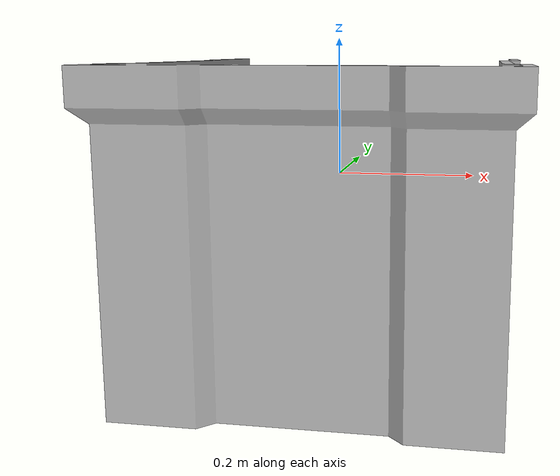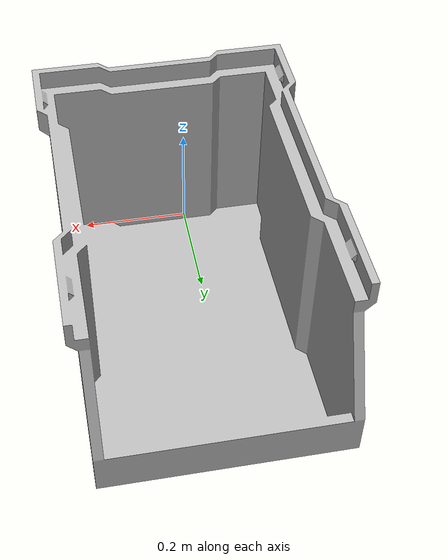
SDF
<?xml version="1.0"?>
<sdf version="1.6">
  <model name="mini_stacking_box">
    <!-- Dinamico: sente la gravità -->
    <static>false</static>

    <link name="link">
      <gravity>1</gravity>
      <self_collide>false</self_collide>

      <!-- Inerzia: massa 1 kg, box eq. 0.54 x 0.81 x 0.45 m -->
      <inertial>
        <mass>1.0</mass>
        <inertia>
          <ixx>0.07155</ixx>
          <iyy>0.041175</iyy>
          <izz>0.078975</izz>
          <ixy>0</ixy><ixz>0</ixz><iyz>0</iyz>
        </inertia>
      </inertial>

      <!-- VISUAL: DAE in metri -->
      <visual name="visual">
        <geometry>
          <mesh>
            <uri>model://mini_stacking_box/meshes/mini_stacking_box.dae</uri>
            <scale>1 1 1</scale>
          </mesh>
        </geometry>
        <cast_shadows>false</cast_shadows>
      </visual>

      <!-- COLLISIONI PRIMITIVE (t = 0.02 m) -->
      <!-- Dimensioni esterne Lx=0.54, Ly=0.81, Lz=0.45 -->
      <!-- Fondo -->
      <collision name="col_bottom">
        <pose>0 0 -0.27 0 0 0</pose>
        <geometry><box><size>0.50 0.77 0.01</size></box></geometry>
        <surface><contact><ode/></contact><friction><ode/></friction></surface>
      </collision>
    </link>
  </model>
</sdf>
